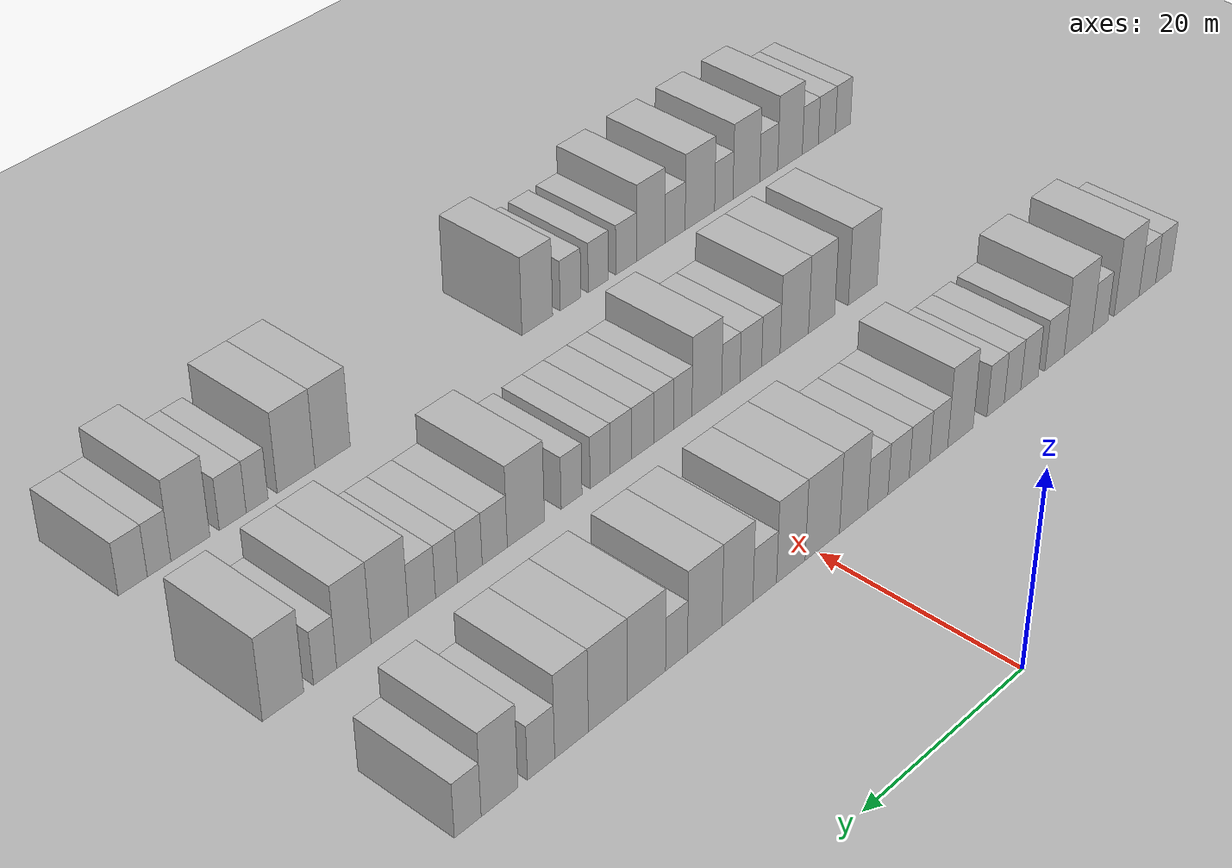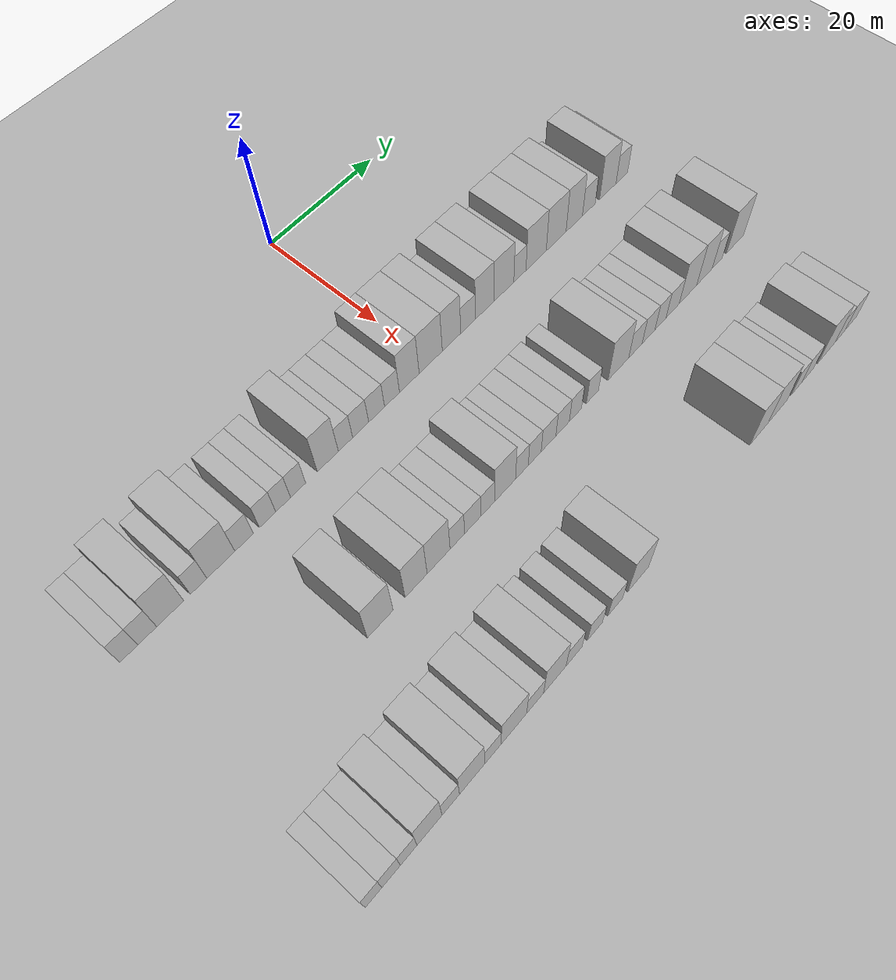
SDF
<sdf version="1.6">
 <world name="default">
  <include><name>ground_plane_1</name><uri>model://HANNAS_ground_plane</uri></include>
  <include>
   <name>ground_plane_2</name>
   <uri>model://HANNAS_ground_plane</uri>
   <pose>100 0 0  0 0 0</pose>
  </include>
  <model name="building_49">
   <static>1</static>
   <pose>25.0000 -50.6906 0 0.000000 0.000000 0.000000</pose>
   <link name="link">
    <pose>0 0 3.00 0 0 0</pose>
    <collision name="collision"><geometry><box><size>10.0000 2.6298 6.0000</size></box></geometry></collision>
    <visual name="visual">
     <cast_shadows>0</cast_shadows>
     <geometry><box><size>10.0000 2.6298 6.0000</size></box></geometry>
     <material>
      <script>
       <uri>model://HANNAS_wall/materials/scripts</uri>
       <uri>model://HANNAS_wall/materials/textures</uri>
       <name>vrc/HANNAS_wall</name>
      </script>
     </material>
    </visual>
   </link>
  </model>
  <model name="building_50">
   <static>1</static>
   <pose>25.0000 -47.9976 0 0.000000 0.000000 0.000000</pose>
   <link name="link">
    <pose>0 0 3.00 0 0 0</pose>
    <collision name="collision"><geometry><box><size>10.0000 2.7562 6.0000</size></box></geometry></collision>
    <visual name="visual">
     <cast_shadows>0</cast_shadows>
     <geometry><box><size>10.0000 2.7562 6.0000</size></box></geometry>
     <material>
      <script>
       <uri>model://HANNAS_wall/materials/scripts</uri>
       <uri>model://HANNAS_wall/materials/textures</uri>
       <name>vrc/HANNAS_wall</name>
      </script>
     </material>
    </visual>
   </link>
  </model>
  <model name="building_51">
   <static>1</static>
   <pose>25.0000 -44.5870 0 0.000000 0.000000 0.000000</pose>
   <link name="link">
    <pose>0 0 4.50 0 0 0</pose>
    <collision name="collision"><geometry><box><size>10.0000 4.0649 9.0000</size></box></geometry></collision>
    <visual name="visual">
     <cast_shadows>0</cast_shadows>
     <geometry><box><size>10.0000 4.0649 9.0000</size></box></geometry>
     <material>
      <script>
       <uri>model://HANNAS_wall/materials/scripts</uri>
       <uri>model://HANNAS_wall/materials/textures</uri>
       <name>vrc/HANNAS_wall</name>
      </script>
     </material>
    </visual>
   </link>
  </model>
  <model name="building_52">
   <static>1</static>
   <pose>25.0000 -40.2904 0 0.000000 0.000000 0.000000</pose>
   <link name="link">
    <pose>0 0 3.00 0 0 0</pose>
    <collision name="collision"><geometry><box><size>10.0000 2.5285 6.0000</size></box></geometry></collision>
    <visual name="visual">
     <cast_shadows>0</cast_shadows>
     <geometry><box><size>10.0000 2.5285 6.0000</size></box></geometry>
     <material>
      <script>
       <uri>model://HANNAS_wall/materials/scripts</uri>
       <uri>model://HANNAS_wall/materials/textures</uri>
       <name>vrc/HANNAS_wall</name>
      </script>
     </material>
    </visual>
   </link>
  </model>
  <model name="building_53">
   <static>1</static>
   <pose>25.0000 -36.8158 0 0.000000 0.000000 0.000000</pose>
   <link name="link">
    <pose>0 0 4.50 0 0 0</pose>
    <collision name="collision"><geometry><box><size>10.0000 4.4206 9.0000</size></box></geometry></collision>
    <visual name="visual">
     <cast_shadows>0</cast_shadows>
     <geometry><box><size>10.0000 4.4206 9.0000</size></box></geometry>
     <material>
      <script>
       <uri>model://HANNAS_wall/materials/scripts</uri>
       <uri>model://HANNAS_wall/materials/textures</uri>
       <name>vrc/HANNAS_wall</name>
      </script>
     </material>
    </visual>
   </link>
  </model>
  <model name="building_54">
   <static>1</static>
   <pose>25.0000 -33.1244 0 0.000000 0.000000 0.000000</pose>
   <link name="link">
    <pose>0 0 3.00 0 0 0</pose>
    <collision name="collision"><geometry><box><size>10.0000 2.9623 6.0000</size></box></geometry></collision>
    <visual name="visual">
     <cast_shadows>0</cast_shadows>
     <geometry><box><size>10.0000 2.9623 6.0000</size></box></geometry>
     <material>
      <script>
       <uri>model://HANNAS_wall/materials/scripts</uri>
       <uri>model://HANNAS_wall/materials/textures</uri>
       <name>vrc/HANNAS_wall</name>
      </script>
     </material>
    </visual>
   </link>
  </model>
  <model name="building_55">
   <static>1</static>
   <pose>25.0000 -29.3102 0 0.000000 0.000000 0.000000</pose>
   <link name="link">
    <pose>0 0 3.00 0 0 0</pose>
    <collision name="collision"><geometry><box><size>10.0000 2.6660 6.0000</size></box></geometry></collision>
    <visual name="visual">
     <cast_shadows>0</cast_shadows>
     <geometry><box><size>10.0000 2.6660 6.0000</size></box></geometry>
     <material>
      <script>
       <uri>model://HANNAS_wall/materials/scripts</uri>
       <uri>model://HANNAS_wall/materials/textures</uri>
       <name>vrc/HANNAS_wall</name>
      </script>
     </material>
    </visual>
   </link>
  </model>
  <model name="building_56">
   <static>1</static>
   <pose>25.0000 -26.7451 0 0.000000 0.000000 0.000000</pose>
   <link name="link">
    <pose>0 0 3.00 0 0 0</pose>
    <collision name="collision"><geometry><box><size>10.0000 2.4643 6.0000</size></box></geometry></collision>
    <visual name="visual">
     <cast_shadows>0</cast_shadows>
     <geometry><box><size>10.0000 2.4643 6.0000</size></box></geometry>
     <material>
      <script>
       <uri>model://HANNAS_wall/materials/scripts</uri>
       <uri>model://HANNAS_wall/materials/textures</uri>
       <name>vrc/HANNAS_wall</name>
      </script>
     </material>
    </visual>
   </link>
  </model>
  <model name="building_57">
   <static>1</static>
   <pose>25.0000 -24.2357 0 0.000000 0.000000 0.000000</pose>
   <link name="link">
    <pose>0 0 3.00 0 0 0</pose>
    <collision name="collision"><geometry><box><size>10.0000 2.5545 6.0000</size></box></geometry></collision>
    <visual name="visual">
     <cast_shadows>0</cast_shadows>
     <geometry><box><size>10.0000 2.5545 6.0000</size></box></geometry>
     <material>
      <script>
       <uri>model://HANNAS_wall/materials/scripts</uri>
       <uri>model://HANNAS_wall/materials/textures</uri>
       <name>vrc/HANNAS_wall</name>
      </script>
     </material>
    </visual>
   </link>
  </model>
  <model name="building_58">
   <static>1</static>
   <pose>25.0000 -19.1254 0 0.000000 0.000000 0.000000</pose>
   <link name="link">
    <pose>0 0 4.50 0 0 0</pose>
    <collision name="collision"><geometry><box><size>10.0000 3.6661 9.0000</size></box></geometry></collision>
    <visual name="visual">
     <cast_shadows>0</cast_shadows>
     <geometry><box><size>10.0000 3.6661 9.0000</size></box></geometry>
     <material>
      <script>
       <uri>model://HANNAS_wall/materials/scripts</uri>
       <uri>model://HANNAS_wall/materials/textures</uri>
       <name>vrc/HANNAS_wall</name>
      </script>
     </material>
    </visual>
   </link>
  </model>
  <model name="building_59">
   <static>1</static>
   <pose>25.0000 -16.0297 0 0.000000 0.000000 0.000000</pose>
   <link name="link">
    <pose>0 0 3.00 0 0 0</pose>
    <collision name="collision"><geometry><box><size>10.0000 2.5253 6.0000</size></box></geometry></collision>
    <visual name="visual">
     <cast_shadows>0</cast_shadows>
     <geometry><box><size>10.0000 2.5253 6.0000</size></box></geometry>
     <material>
      <script>
       <uri>model://HANNAS_wall/materials/scripts</uri>
       <uri>model://HANNAS_wall/materials/textures</uri>
       <name>vrc/HANNAS_wall</name>
      </script>
     </material>
    </visual>
   </link>
  </model>
  <model name="building_60">
   <static>1</static>
   <pose>25.0000 -13.3281 0 0.000000 0.000000 0.000000</pose>
   <link name="link">
    <pose>0 0 3.00 0 0 0</pose>
    <collision name="collision"><geometry><box><size>10.0000 2.8779 6.0000</size></box></geometry></collision>
    <visual name="visual">
     <cast_shadows>0</cast_shadows>
     <geometry><box><size>10.0000 2.8779 6.0000</size></box></geometry>
     <material>
      <script>
       <uri>model://HANNAS_wall/materials/scripts</uri>
       <uri>model://HANNAS_wall/materials/textures</uri>
       <name>vrc/HANNAS_wall</name>
      </script>
     </material>
    </visual>
   </link>
  </model>
  <model name="building_61">
   <static>1</static>
   <pose>25.0000 -10.4419 0 0.000000 0.000000 0.000000</pose>
   <link name="link">
    <pose>0 0 3.00 0 0 0</pose>
    <collision name="collision"><geometry><box><size>10.0000 2.8945 6.0000</size></box></geometry></collision>
    <visual name="visual">
     <cast_shadows>0</cast_shadows>
     <geometry><box><size>10.0000 2.8945 6.0000</size></box></geometry>
     <material>
      <script>
       <uri>model://HANNAS_wall/materials/scripts</uri>
       <uri>model://HANNAS_wall/materials/textures</uri>
       <name>vrc/HANNAS_wall</name>
      </script>
     </material>
    </visual>
   </link>
  </model>
  <model name="building_62">
   <static>1</static>
   <pose>25.0000 -7.6137 0 0.000000 0.000000 0.000000</pose>
   <link name="link">
    <pose>0 0 3.00 0 0 0</pose>
    <collision name="collision"><geometry><box><size>10.0000 2.7620 6.0000</size></box></geometry></collision>
    <visual name="visual">
     <cast_shadows>0</cast_shadows>
     <geometry><box><size>10.0000 2.7620 6.0000</size></box></geometry>
     <material>
      <script>
       <uri>model://HANNAS_wall/materials/scripts</uri>
       <uri>model://HANNAS_wall/materials/textures</uri>
       <name>vrc/HANNAS_wall</name>
      </script>
     </material>
    </visual>
   </link>
  </model>
  <model name="building_63">
   <static>1</static>
   <pose>25.0000 -4.3814 0 0.000000 0.000000 0.000000</pose>
   <link name="link">
    <pose>0 0 4.50 0 0 0</pose>
    <collision name="collision"><geometry><box><size>10.0000 3.7026 9.0000</size></box></geometry></collision>
    <visual name="visual">
     <cast_shadows>0</cast_shadows>
     <geometry><box><size>10.0000 3.7026 9.0000</size></box></geometry>
     <material>
      <script>
       <uri>model://HANNAS_wall/materials/scripts</uri>
       <uri>model://HANNAS_wall/materials/textures</uri>
       <name>vrc/HANNAS_wall</name>
      </script>
     </material>
    </visual>
   </link>
  </model>
  <model name="building_64">
   <static>1</static>
   <pose>25.0000 -0.3023 0 0.000000 0.000000 0.000000</pose>
   <link name="link">
    <pose>0 0 4.50 0 0 0</pose>
    <collision name="collision"><geometry><box><size>10.0000 4.4557 9.0000</size></box></geometry></collision>
    <visual name="visual">
     <cast_shadows>0</cast_shadows>
     <geometry><box><size>10.0000 4.4557 9.0000</size></box></geometry>
     <material>
      <script>
       <uri>model://HANNAS_wall/materials/scripts</uri>
       <uri>model://HANNAS_wall/materials/textures</uri>
       <name>vrc/HANNAS_wall</name>
      </script>
     </material>
    </visual>
   </link>
  </model>
  <model name="building_65">
   <static>1</static>
   <pose>25.0000 3.7389 0 0.000000 0.000000 0.000000</pose>
   <link name="link">
    <pose>0 0 4.50 0 0 0</pose>
    <collision name="collision"><geometry><box><size>10.0000 3.6267 9.0000</size></box></geometry></collision>
    <visual name="visual">
     <cast_shadows>0</cast_shadows>
     <geometry><box><size>10.0000 3.6267 9.0000</size></box></geometry>
     <material>
      <script>
       <uri>model://HANNAS_wall/materials/scripts</uri>
       <uri>model://HANNAS_wall/materials/textures</uri>
       <name>vrc/HANNAS_wall</name>
      </script>
     </material>
    </visual>
   </link>
  </model>
  <model name="building_66">
   <static>1</static>
   <pose>25.0000 7.0248 0 0.000000 0.000000 0.000000</pose>
   <link name="link">
    <pose>0 0 3.00 0 0 0</pose>
    <collision name="collision"><geometry><box><size>10.0000 2.9451 6.0000</size></box></geometry></collision>
    <visual name="visual">
     <cast_shadows>0</cast_shadows>
     <geometry><box><size>10.0000 2.9451 6.0000</size></box></geometry>
     <material>
      <script>
       <uri>model://HANNAS_wall/materials/scripts</uri>
       <uri>model://HANNAS_wall/materials/textures</uri>
       <name>vrc/HANNAS_wall</name>
      </script>
     </material>
    </visual>
   </link>
  </model>
  <model name="building_67">
   <static>1</static>
   <pose>25.0000 10.3840 0 0.000000 0.000000 0.000000</pose>
   <link name="link">
    <pose>0 0 4.50 0 0 0</pose>
    <collision name="collision"><geometry><box><size>10.0000 3.7734 9.0000</size></box></geometry></collision>
    <visual name="visual">
     <cast_shadows>0</cast_shadows>
     <geometry><box><size>10.0000 3.7734 9.0000</size></box></geometry>
     <material>
      <script>
       <uri>model://HANNAS_wall/materials/scripts</uri>
       <uri>model://HANNAS_wall/materials/textures</uri>
       <name>vrc/HANNAS_wall</name>
      </script>
     </material>
    </visual>
   </link>
  </model>
  <model name="building_68">
   <static>1</static>
   <pose>25.0000 14.3235 0 0.000000 0.000000 0.000000</pose>
   <link name="link">
    <pose>0 0 4.50 0 0 0</pose>
    <collision name="collision"><geometry><box><size>10.0000 4.1055 9.0000</size></box></geometry></collision>
    <visual name="visual">
     <cast_shadows>0</cast_shadows>
     <geometry><box><size>10.0000 4.1055 9.0000</size></box></geometry>
     <material>
      <script>
       <uri>model://HANNAS_wall/materials/scripts</uri>
       <uri>model://HANNAS_wall/materials/textures</uri>
       <name>vrc/HANNAS_wall</name>
      </script>
     </material>
    </visual>
   </link>
  </model>
  <model name="building_69">
   <static>1</static>
   <pose>25.0000 17.6575 0 0.000000 0.000000 0.000000</pose>
   <link name="link">
    <pose>0 0 3.00 0 0 0</pose>
    <collision name="collision"><geometry><box><size>10.0000 2.5625 6.0000</size></box></geometry></collision>
    <visual name="visual">
     <cast_shadows>0</cast_shadows>
     <geometry><box><size>10.0000 2.5625 6.0000</size></box></geometry>
     <material>
      <script>
       <uri>model://HANNAS_wall/materials/scripts</uri>
       <uri>model://HANNAS_wall/materials/textures</uri>
       <name>vrc/HANNAS_wall</name>
      </script>
     </material>
    </visual>
   </link>
  </model>
  <model name="building_70">
   <static>1</static>
   <pose>25.0000 21.1215 0 0.000000 0.000000 0.000000</pose>
   <link name="link">
    <pose>0 0 4.50 0 0 0</pose>
    <collision name="collision"><geometry><box><size>10.0000 4.3653 9.0000</size></box></geometry></collision>
    <visual name="visual">
     <cast_shadows>0</cast_shadows>
     <geometry><box><size>10.0000 4.3653 9.0000</size></box></geometry>
     <material>
      <script>
       <uri>model://HANNAS_wall/materials/scripts</uri>
       <uri>model://HANNAS_wall/materials/textures</uri>
       <name>vrc/HANNAS_wall</name>
      </script>
     </material>
    </visual>
   </link>
  </model>
  <model name="building_71">
   <static>1</static>
   <pose>25.0000 25.4780 0 0.000000 0.000000 0.000000</pose>
   <link name="link">
    <pose>0 0 4.50 0 0 0</pose>
    <collision name="collision"><geometry><box><size>10.0000 4.3476 9.0000</size></box></geometry></collision>
    <visual name="visual">
     <cast_shadows>0</cast_shadows>
     <geometry><box><size>10.0000 4.3476 9.0000</size></box></geometry>
     <material>
      <script>
       <uri>model://HANNAS_wall/materials/scripts</uri>
       <uri>model://HANNAS_wall/materials/textures</uri>
       <name>vrc/HANNAS_wall</name>
      </script>
     </material>
    </visual>
   </link>
  </model>
  <model name="building_72">
   <static>1</static>
   <pose>25.0000 29.4910 0 0.000000 0.000000 0.000000</pose>
   <link name="link">
    <pose>0 0 4.50 0 0 0</pose>
    <collision name="collision"><geometry><box><size>10.0000 3.6784 9.0000</size></box></geometry></collision>
    <visual name="visual">
     <cast_shadows>0</cast_shadows>
     <geometry><box><size>10.0000 3.6784 9.0000</size></box></geometry>
     <material>
      <script>
       <uri>model://HANNAS_wall/materials/scripts</uri>
       <uri>model://HANNAS_wall/materials/textures</uri>
       <name>vrc/HANNAS_wall</name>
      </script>
     </material>
    </visual>
   </link>
  </model>
  <model name="building_73">
   <static>1</static>
   <pose>25.0000 32.7859 0 0.000000 0.000000 0.000000</pose>
   <link name="link">
    <pose>0 0 3.00 0 0 0</pose>
    <collision name="collision"><geometry><box><size>10.0000 2.9114 6.0000</size></box></geometry></collision>
    <visual name="visual">
     <cast_shadows>0</cast_shadows>
     <geometry><box><size>10.0000 2.9114 6.0000</size></box></geometry>
     <material>
      <script>
       <uri>model://HANNAS_wall/materials/scripts</uri>
       <uri>model://HANNAS_wall/materials/textures</uri>
       <name>vrc/HANNAS_wall</name>
      </script>
     </material>
    </visual>
   </link>
  </model>
  <model name="building_74">
   <static>1</static>
   <pose>25.0000 37.1558 0 0.000000 0.000000 0.000000</pose>
   <link name="link">
    <pose>0 0 4.50 0 0 0</pose>
    <collision name="collision"><geometry><box><size>10.0000 3.8284 9.0000</size></box></geometry></collision>
    <visual name="visual">
     <cast_shadows>0</cast_shadows>
     <geometry><box><size>10.0000 3.8284 9.0000</size></box></geometry>
     <material>
      <script>
       <uri>model://HANNAS_wall/materials/scripts</uri>
       <uri>model://HANNAS_wall/materials/textures</uri>
       <name>vrc/HANNAS_wall</name>
      </script>
     </material>
    </visual>
   </link>
  </model>
  <model name="building_75">
   <static>1</static>
   <pose>25.0000 40.4386 0 0.000000 0.000000 0.000000</pose>
   <link name="link">
    <pose>0 0 3.00 0 0 0</pose>
    <collision name="collision"><geometry><box><size>10.0000 2.7372 6.0000</size></box></geometry></collision>
    <visual name="visual">
     <cast_shadows>0</cast_shadows>
     <geometry><box><size>10.0000 2.7372 6.0000</size></box></geometry>
     <material>
      <script>
       <uri>model://HANNAS_wall/materials/scripts</uri>
       <uri>model://HANNAS_wall/materials/textures</uri>
       <name>vrc/HANNAS_wall</name>
      </script>
     </material>
    </visual>
   </link>
  </model>
  <model name="building_173">
   <static>1</static>
   <pose>44.0000 -30.0078 0 0.000000 0.000000 0.000000</pose>
   <link name="link">
    <pose>0 0 4.50 0 0 0</pose>
    <collision name="collision"><geometry><box><size>10.0000 4.2751 9.0000</size></box></geometry></collision>
    <visual name="visual">
     <cast_shadows>0</cast_shadows>
     <geometry><box><size>10.0000 4.2751 9.0000</size></box></geometry>
     <material>
      <script>
       <uri>model://HANNAS_wall/materials/scripts</uri>
       <uri>model://HANNAS_wall/materials/textures</uri>
       <name>vrc/HANNAS_wall</name>
      </script>
     </material>
    </visual>
   </link>
  </model>
  <model name="building_174">
   <static>1</static>
   <pose>44.0000 -23.9813 0 0.000000 0.000000 0.000000</pose>
   <link name="link">
    <pose>0 0 4.50 0 0 0</pose>
    <collision name="collision"><geometry><box><size>10.0000 3.7779 9.0000</size></box></geometry></collision>
    <visual name="visual">
     <cast_shadows>0</cast_shadows>
     <geometry><box><size>10.0000 3.7779 9.0000</size></box></geometry>
     <material>
      <script>
       <uri>model://HANNAS_wall/materials/scripts</uri>
       <uri>model://HANNAS_wall/materials/textures</uri>
       <name>vrc/HANNAS_wall</name>
      </script>
     </material>
    </visual>
   </link>
  </model>
  <model name="building_175">
   <static>1</static>
   <pose>44.0000 -20.0873 0 0.000000 0.000000 0.000000</pose>
   <link name="link">
    <pose>0 0 4.50 0 0 0</pose>
    <collision name="collision"><geometry><box><size>10.0000 4.0100 9.0000</size></box></geometry></collision>
    <visual name="visual">
     <cast_shadows>0</cast_shadows>
     <geometry><box><size>10.0000 4.0100 9.0000</size></box></geometry>
     <material>
      <script>
       <uri>model://HANNAS_wall/materials/scripts</uri>
       <uri>model://HANNAS_wall/materials/textures</uri>
       <name>vrc/HANNAS_wall</name>
      </script>
     </material>
    </visual>
   </link>
  </model>
  <model name="building_176">
   <static>1</static>
   <pose>44.0000 -16.7918 0 0.000000 0.000000 0.000000</pose>
   <link name="link">
    <pose>0 0 3.00 0 0 0</pose>
    <collision name="collision"><geometry><box><size>10.0000 2.5811 6.0000</size></box></geometry></collision>
    <visual name="visual">
     <cast_shadows>0</cast_shadows>
     <geometry><box><size>10.0000 2.5811 6.0000</size></box></geometry>
     <material>
      <script>
       <uri>model://HANNAS_wall/materials/scripts</uri>
       <uri>model://HANNAS_wall/materials/textures</uri>
       <name>vrc/HANNAS_wall</name>
      </script>
     </material>
    </visual>
   </link>
  </model>
  <model name="building_177">
   <static>1</static>
   <pose>44.0000 -14.0156 0 0.000000 0.000000 0.000000</pose>
   <link name="link">
    <pose>0 0 3.00 0 0 0</pose>
    <collision name="collision"><geometry><box><size>10.0000 2.9712 6.0000</size></box></geometry></collision>
    <visual name="visual">
     <cast_shadows>0</cast_shadows>
     <geometry><box><size>10.0000 2.9712 6.0000</size></box></geometry>
     <material>
      <script>
       <uri>model://HANNAS_wall/materials/scripts</uri>
       <uri>model://HANNAS_wall/materials/textures</uri>
       <name>vrc/HANNAS_wall</name>
      </script>
     </material>
    </visual>
   </link>
  </model>
  <model name="building_178">
   <static>1</static>
   <pose>44.0000 -11.2934 0 0.000000 0.000000 0.000000</pose>
   <link name="link">
    <pose>0 0 3.00 0 0 0</pose>
    <collision name="collision"><geometry><box><size>10.0000 2.4733 6.0000</size></box></geometry></collision>
    <visual name="visual">
     <cast_shadows>0</cast_shadows>
     <geometry><box><size>10.0000 2.4733 6.0000</size></box></geometry>
     <material>
      <script>
       <uri>model://HANNAS_wall/materials/scripts</uri>
       <uri>model://HANNAS_wall/materials/textures</uri>
       <name>vrc/HANNAS_wall</name>
      </script>
     </material>
    </visual>
   </link>
  </model>
  <model name="building_179">
   <static>1</static>
   <pose>44.0000 -8.0855 0 0.000000 0.000000 0.000000</pose>
   <link name="link">
    <pose>0 0 4.50 0 0 0</pose>
    <collision name="collision"><geometry><box><size>10.0000 3.9425 9.0000</size></box></geometry></collision>
    <visual name="visual">
     <cast_shadows>0</cast_shadows>
     <geometry><box><size>10.0000 3.9425 9.0000</size></box></geometry>
     <material>
      <script>
       <uri>model://HANNAS_wall/materials/scripts</uri>
       <uri>model://HANNAS_wall/materials/textures</uri>
       <name>vrc/HANNAS_wall</name>
      </script>
     </material>
    </visual>
   </link>
  </model>
  <model name="building_180">
   <static>1</static>
   <pose>44.0000 -4.9028 0 0.000000 0.000000 0.000000</pose>
   <link name="link">
    <pose>0 0 3.00 0 0 0</pose>
    <collision name="collision"><geometry><box><size>10.0000 2.4229 6.0000</size></box></geometry></collision>
    <visual name="visual">
     <cast_shadows>0</cast_shadows>
     <geometry><box><size>10.0000 2.4229 6.0000</size></box></geometry>
     <material>
      <script>
       <uri>model://HANNAS_wall/materials/scripts</uri>
       <uri>model://HANNAS_wall/materials/textures</uri>
       <name>vrc/HANNAS_wall</name>
      </script>
     </material>
    </visual>
   </link>
  </model>
  <model name="building_181">
   <static>1</static>
   <pose>44.0000 -2.4399 0 0.000000 0.000000 0.000000</pose>
   <link name="link">
    <pose>0 0 3.00 0 0 0</pose>
    <collision name="collision"><geometry><box><size>10.0000 2.5028 6.0000</size></box></geometry></collision>
    <visual name="visual">
     <cast_shadows>0</cast_shadows>
     <geometry><box><size>10.0000 2.5028 6.0000</size></box></geometry>
     <material>
      <script>
       <uri>model://HANNAS_wall/materials/scripts</uri>
       <uri>model://HANNAS_wall/materials/textures</uri>
       <name>vrc/HANNAS_wall</name>
      </script>
     </material>
    </visual>
   </link>
  </model>
  <model name="building_182">
   <static>1</static>
   <pose>44.0000 0.2525 0 0.000000 0.000000 0.000000</pose>
   <link name="link">
    <pose>0 0 3.00 0 0 0</pose>
    <collision name="collision"><geometry><box><size>10.0000 2.8821 6.0000</size></box></geometry></collision>
    <visual name="visual">
     <cast_shadows>0</cast_shadows>
     <geometry><box><size>10.0000 2.8821 6.0000</size></box></geometry>
     <material>
      <script>
       <uri>model://HANNAS_wall/materials/scripts</uri>
       <uri>model://HANNAS_wall/materials/textures</uri>
       <name>vrc/HANNAS_wall</name>
      </script>
     </material>
    </visual>
   </link>
  </model>
  <model name="building_183">
   <static>1</static>
   <pose>44.0000 3.0267 0 0.000000 0.000000 0.000000</pose>
   <link name="link">
    <pose>0 0 3.00 0 0 0</pose>
    <collision name="collision"><geometry><box><size>10.0000 2.6662 6.0000</size></box></geometry></collision>
    <visual name="visual">
     <cast_shadows>0</cast_shadows>
     <geometry><box><size>10.0000 2.6662 6.0000</size></box></geometry>
     <material>
      <script>
       <uri>model://HANNAS_wall/materials/scripts</uri>
       <uri>model://HANNAS_wall/materials/textures</uri>
       <name>vrc/HANNAS_wall</name>
      </script>
     </material>
    </visual>
   </link>
  </model>
  <model name="building_184">
   <static>1</static>
   <pose>44.0000 5.5881 0 0.000000 0.000000 0.000000</pose>
   <link name="link">
    <pose>0 0 3.00 0 0 0</pose>
    <collision name="collision"><geometry><box><size>10.0000 2.4566 6.0000</size></box></geometry></collision>
    <visual name="visual">
     <cast_shadows>0</cast_shadows>
     <geometry><box><size>10.0000 2.4566 6.0000</size></box></geometry>
     <material>
      <script>
       <uri>model://HANNAS_wall/materials/scripts</uri>
       <uri>model://HANNAS_wall/materials/textures</uri>
       <name>vrc/HANNAS_wall</name>
      </script>
     </material>
    </visual>
   </link>
  </model>
  <model name="building_185">
   <static>1</static>
   <pose>44.0000 9.0751 0 0.000000 0.000000 0.000000</pose>
   <link name="link">
    <pose>0 0 3.00 0 0 0</pose>
    <collision name="collision"><geometry><box><size>10.0000 2.5174 6.0000</size></box></geometry></collision>
    <visual name="visual">
     <cast_shadows>0</cast_shadows>
     <geometry><box><size>10.0000 2.5174 6.0000</size></box></geometry>
     <material>
      <script>
       <uri>model://HANNAS_wall/materials/scripts</uri>
       <uri>model://HANNAS_wall/materials/textures</uri>
       <name>vrc/HANNAS_wall</name>
      </script>
     </material>
    </visual>
   </link>
  </model>
  <model name="building_186">
   <static>1</static>
   <pose>44.0000 14.5229 0 0.000000 0.000000 0.000000</pose>
   <link name="link">
    <pose>0 0 4.50 0 0 0</pose>
    <collision name="collision"><geometry><box><size>10.0000 4.3783 9.0000</size></box></geometry></collision>
    <visual name="visual">
     <cast_shadows>0</cast_shadows>
     <geometry><box><size>10.0000 4.3783 9.0000</size></box></geometry>
     <material>
      <script>
       <uri>model://HANNAS_wall/materials/scripts</uri>
       <uri>model://HANNAS_wall/materials/textures</uri>
       <name>vrc/HANNAS_wall</name>
      </script>
     </material>
    </visual>
   </link>
  </model>
  <model name="building_187">
   <static>1</static>
   <pose>44.0000 18.1627 0 0.000000 0.000000 0.000000</pose>
   <link name="link">
    <pose>0 0 3.00 0 0 0</pose>
    <collision name="collision"><geometry><box><size>10.0000 2.9013 6.0000</size></box></geometry></collision>
    <visual name="visual">
     <cast_shadows>0</cast_shadows>
     <geometry><box><size>10.0000 2.9013 6.0000</size></box></geometry>
     <material>
      <script>
       <uri>model://HANNAS_wall/materials/scripts</uri>
       <uri>model://HANNAS_wall/materials/textures</uri>
       <name>vrc/HANNAS_wall</name>
      </script>
     </material>
    </visual>
   </link>
  </model>
  <model name="building_188">
   <static>1</static>
   <pose>44.0000 21.0197 0 0.000000 0.000000 0.000000</pose>
   <link name="link">
    <pose>0 0 3.00 0 0 0</pose>
    <collision name="collision"><geometry><box><size>10.0000 2.8128 6.0000</size></box></geometry></collision>
    <visual name="visual">
     <cast_shadows>0</cast_shadows>
     <geometry><box><size>10.0000 2.8128 6.0000</size></box></geometry>
     <material>
      <script>
       <uri>model://HANNAS_wall/materials/scripts</uri>
       <uri>model://HANNAS_wall/materials/textures</uri>
       <name>vrc/HANNAS_wall</name>
      </script>
     </material>
    </visual>
   </link>
  </model>
  <model name="building_189">
   <static>1</static>
   <pose>44.0000 23.6505 0 0.000000 0.000000 0.000000</pose>
   <link name="link">
    <pose>0 0 3.00 0 0 0</pose>
    <collision name="collision"><geometry><box><size>10.0000 2.4487 6.0000</size></box></geometry></collision>
    <visual name="visual">
     <cast_shadows>0</cast_shadows>
     <geometry><box><size>10.0000 2.4487 6.0000</size></box></geometry>
     <material>
      <script>
       <uri>model://HANNAS_wall/materials/scripts</uri>
       <uri>model://HANNAS_wall/materials/textures</uri>
       <name>vrc/HANNAS_wall</name>
      </script>
     </material>
    </visual>
   </link>
  </model>
  <model name="building_190">
   <static>1</static>
   <pose>44.0000 26.3675 0 0.000000 0.000000 0.000000</pose>
   <link name="link">
    <pose>0 0 3.00 0 0 0</pose>
    <collision name="collision"><geometry><box><size>10.0000 2.9855 6.0000</size></box></geometry></collision>
    <visual name="visual">
     <cast_shadows>0</cast_shadows>
     <geometry><box><size>10.0000 2.9855 6.0000</size></box></geometry>
     <material>
      <script>
       <uri>model://HANNAS_wall/materials/scripts</uri>
       <uri>model://HANNAS_wall/materials/textures</uri>
       <name>vrc/HANNAS_wall</name>
      </script>
     </material>
    </visual>
   </link>
  </model>
  <model name="building_191">
   <static>1</static>
   <pose>44.0000 29.8787 0 0.000000 0.000000 0.000000</pose>
   <link name="link">
    <pose>0 0 4.50 0 0 0</pose>
    <collision name="collision"><geometry><box><size>10.0000 4.0370 9.0000</size></box></geometry></collision>
    <visual name="visual">
     <cast_shadows>0</cast_shadows>
     <geometry><box><size>10.0000 4.0370 9.0000</size></box></geometry>
     <material>
      <script>
       <uri>model://HANNAS_wall/materials/scripts</uri>
       <uri>model://HANNAS_wall/materials/textures</uri>
       <name>vrc/HANNAS_wall</name>
      </script>
     </material>
    </visual>
   </link>
  </model>
  <model name="building_192">
   <static>1</static>
   <pose>44.0000 33.7124 0 0.000000 0.000000 0.000000</pose>
   <link name="link">
    <pose>0 0 4.50 0 0 0</pose>
    <collision name="collision"><geometry><box><size>10.0000 3.6303 9.0000</size></box></geometry></collision>
    <visual name="visual">
     <cast_shadows>0</cast_shadows>
     <geometry><box><size>10.0000 3.6303 9.0000</size></box></geometry>
     <material>
      <script>
       <uri>model://HANNAS_wall/materials/scripts</uri>
       <uri>model://HANNAS_wall/materials/textures</uri>
       <name>vrc/HANNAS_wall</name>
      </script>
     </material>
    </visual>
   </link>
  </model>
  <model name="building_193">
   <static>1</static>
   <pose>44.0000 36.7323 0 0.000000 0.000000 0.000000</pose>
   <link name="link">
    <pose>0 0 3.00 0 0 0</pose>
    <collision name="collision"><geometry><box><size>10.0000 2.4097 6.0000</size></box></geometry></collision>
    <visual name="visual">
     <cast_shadows>0</cast_shadows>
     <geometry><box><size>10.0000 2.4097 6.0000</size></box></geometry>
     <material>
      <script>
       <uri>model://HANNAS_wall/materials/scripts</uri>
       <uri>model://HANNAS_wall/materials/textures</uri>
       <name>vrc/HANNAS_wall</name>
      </script>
     </material>
    </visual>
   </link>
  </model>
  <model name="building_194">
   <static>1</static>
   <pose>44.0000 41.0354 0 0.000000 0.000000 0.000000</pose>
   <link name="link">
    <pose>0 0 4.50 0 0 0</pose>
    <collision name="collision"><geometry><box><size>10.0000 4.1964 9.0000</size></box></geometry></collision>
    <visual name="visual">
     <cast_shadows>0</cast_shadows>
     <geometry><box><size>10.0000 4.1964 9.0000</size></box></geometry>
     <material>
      <script>
       <uri>model://HANNAS_wall/materials/scripts</uri>
       <uri>model://HANNAS_wall/materials/textures</uri>
       <name>vrc/HANNAS_wall</name>
      </script>
     </material>
    </visual>
   </link>
  </model>
  <model name="building_288">
   <static>1</static>
   <pose>63.0000 -51.1696 0 0.000000 0.000000 0.000000</pose>
   <link name="link">
    <pose>0 0 3.00 0 0 0</pose>
    <collision name="collision"><geometry><box><size>10.0000 2.4294 6.0000</size></box></geometry></collision>
    <visual name="visual">
     <cast_shadows>0</cast_shadows>
     <geometry><box><size>10.0000 2.4294 6.0000</size></box></geometry>
     <material>
      <script>
       <uri>model://HANNAS_wall/materials/scripts</uri>
       <uri>model://HANNAS_wall/materials/textures</uri>
       <name>vrc/HANNAS_wall</name>
      </script>
     </material>
    </visual>
   </link>
  </model>
  <model name="building_289">
   <static>1</static>
   <pose>63.0000 -48.5936 0 0.000000 0.000000 0.000000</pose>
   <link name="link">
    <pose>0 0 3.00 0 0 0</pose>
    <collision name="collision"><geometry><box><size>10.0000 2.7227 6.0000</size></box></geometry></collision>
    <visual name="visual">
     <cast_shadows>0</cast_shadows>
     <geometry><box><size>10.0000 2.7227 6.0000</size></box></geometry>
     <material>
      <script>
       <uri>model://HANNAS_wall/materials/scripts</uri>
       <uri>model://HANNAS_wall/materials/textures</uri>
       <name>vrc/HANNAS_wall</name>
      </script>
     </material>
    </visual>
   </link>
  </model>
  <model name="building_290">
   <static>1</static>
   <pose>63.0000 -45.9741 0 0.000000 0.000000 0.000000</pose>
   <link name="link">
    <pose>0 0 3.00 0 0 0</pose>
    <collision name="collision"><geometry><box><size>10.0000 2.5162 6.0000</size></box></geometry></collision>
    <visual name="visual">
     <cast_shadows>0</cast_shadows>
     <geometry><box><size>10.0000 2.5162 6.0000</size></box></geometry>
     <material>
      <script>
       <uri>model://HANNAS_wall/materials/scripts</uri>
       <uri>model://HANNAS_wall/materials/textures</uri>
       <name>vrc/HANNAS_wall</name>
      </script>
     </material>
    </visual>
   </link>
  </model>
  <model name="building_291">
   <static>1</static>
   <pose>63.0000 -42.8010 0 0.000000 0.000000 0.000000</pose>
   <link name="link">
    <pose>0 0 4.50 0 0 0</pose>
    <collision name="collision"><geometry><box><size>10.0000 3.8300 9.0000</size></box></geometry></collision>
    <visual name="visual">
     <cast_shadows>0</cast_shadows>
     <geometry><box><size>10.0000 3.8300 9.0000</size></box></geometry>
     <material>
      <script>
       <uri>model://HANNAS_wall/materials/scripts</uri>
       <uri>model://HANNAS_wall/materials/textures</uri>
       <name>vrc/HANNAS_wall</name>
      </script>
     </material>
    </visual>
   </link>
  </model>
  <model name="building_292">
   <static>1</static>
   <pose>63.0000 -39.5130 0 0.000000 0.000000 0.000000</pose>
   <link name="link">
    <pose>0 0 3.00 0 0 0</pose>
    <collision name="collision"><geometry><box><size>10.0000 2.7461 6.0000</size></box></geometry></collision>
    <visual name="visual">
     <cast_shadows>0</cast_shadows>
     <geometry><box><size>10.0000 2.7461 6.0000</size></box></geometry>
     <material>
      <script>
       <uri>model://HANNAS_wall/materials/scripts</uri>
       <uri>model://HANNAS_wall/materials/textures</uri>
       <name>vrc/HANNAS_wall</name>
      </script>
     </material>
    </visual>
   </link>
  </model>
  <model name="building_293">
   <static>1</static>
   <pose>63.0000 -36.1233 0 0.000000 0.000000 0.000000</pose>
   <link name="link">
    <pose>0 0 4.50 0 0 0</pose>
    <collision name="collision"><geometry><box><size>10.0000 4.0334 9.0000</size></box></geometry></collision>
    <visual name="visual">
     <cast_shadows>0</cast_shadows>
     <geometry><box><size>10.0000 4.0334 9.0000</size></box></geometry>
     <material>
      <script>
       <uri>model://HANNAS_wall/materials/scripts</uri>
       <uri>model://HANNAS_wall/materials/textures</uri>
       <name>vrc/HANNAS_wall</name>
      </script>
     </material>
    </visual>
   </link>
  </model>
  <model name="building_294">
   <static>1</static>
   <pose>63.0000 -32.7518 0 0.000000 0.000000 0.000000</pose>
   <link name="link">
    <pose>0 0 3.00 0 0 0</pose>
    <collision name="collision"><geometry><box><size>10.0000 2.7096 6.0000</size></box></geometry></collision>
    <visual name="visual">
     <cast_shadows>0</cast_shadows>
     <geometry><box><size>10.0000 2.7096 6.0000</size></box></geometry>
     <material>
      <script>
       <uri>model://HANNAS_wall/materials/scripts</uri>
       <uri>model://HANNAS_wall/materials/textures</uri>
       <name>vrc/HANNAS_wall</name>
      </script>
     </material>
    </visual>
   </link>
  </model>
  <model name="building_295">
   <static>1</static>
   <pose>63.0000 -29.2472 0 0.000000 0.000000 0.000000</pose>
   <link name="link">
    <pose>0 0 4.50 0 0 0</pose>
    <collision name="collision"><geometry><box><size>10.0000 4.2996 9.0000</size></box></geometry></collision>
    <visual name="visual">
     <cast_shadows>0</cast_shadows>
     <geometry><box><size>10.0000 4.2996 9.0000</size></box></geometry>
     <material>
      <script>
       <uri>model://HANNAS_wall/materials/scripts</uri>
       <uri>model://HANNAS_wall/materials/textures</uri>
       <name>vrc/HANNAS_wall</name>
      </script>
     </material>
    </visual>
   </link>
  </model>
  <model name="building_296">
   <static>1</static>
   <pose>63.0000 -25.6414 0 0.000000 0.000000 0.000000</pose>
   <link name="link">
    <pose>0 0 3.00 0 0 0</pose>
    <collision name="collision"><geometry><box><size>10.0000 2.9120 6.0000</size></box></geometry></collision>
    <visual name="visual">
     <cast_shadows>0</cast_shadows>
     <geometry><box><size>10.0000 2.9120 6.0000</size></box></geometry>
     <material>
      <script>
       <uri>model://HANNAS_wall/materials/scripts</uri>
       <uri>model://HANNAS_wall/materials/textures</uri>
       <name>vrc/HANNAS_wall</name>
      </script>
     </material>
    </visual>
   </link>
  </model>
  <model name="building_297">
   <static>1</static>
   <pose>63.0000 -22.2075 0 0.000000 0.000000 0.000000</pose>
   <link name="link">
    <pose>0 0 4.50 0 0 0</pose>
    <collision name="collision"><geometry><box><size>10.0000 3.9558 9.0000</size></box></geometry></collision>
    <visual name="visual">
     <cast_shadows>0</cast_shadows>
     <geometry><box><size>10.0000 3.9558 9.0000</size></box></geometry>
     <material>
      <script>
       <uri>model://HANNAS_wall/materials/scripts</uri>
       <uri>model://HANNAS_wall/materials/textures</uri>
       <name>vrc/HANNAS_wall</name>
      </script>
     </material>
    </visual>
   </link>
  </model>
  <model name="building_298">
   <static>1</static>
   <pose>63.0000 -18.7862 0 0.000000 0.000000 0.000000</pose>
   <link name="link">
    <pose>0 0 3.00 0 0 0</pose>
    <collision name="collision"><geometry><box><size>10.0000 2.8870 6.0000</size></box></geometry></collision>
    <visual name="visual">
     <cast_shadows>0</cast_shadows>
     <geometry><box><size>10.0000 2.8870 6.0000</size></box></geometry>
     <material>
      <script>
       <uri>model://HANNAS_wall/materials/scripts</uri>
       <uri>model://HANNAS_wall/materials/textures</uri>
       <name>vrc/HANNAS_wall</name>
      </script>
     </material>
    </visual>
   </link>
  </model>
  <model name="building_299">
   <static>1</static>
   <pose>63.0000 -14.9668 0 0.000000 0.000000 0.000000</pose>
   <link name="link">
    <pose>0 0 3.00 0 0 0</pose>
    <collision name="collision"><geometry><box><size>10.0000 2.7517 6.0000</size></box></geometry></collision>
    <visual name="visual">
     <cast_shadows>0</cast_shadows>
     <geometry><box><size>10.0000 2.7517 6.0000</size></box></geometry>
     <material>
      <script>
       <uri>model://HANNAS_wall/materials/scripts</uri>
       <uri>model://HANNAS_wall/materials/textures</uri>
       <name>vrc/HANNAS_wall</name>
      </script>
     </material>
    </visual>
   </link>
  </model>
  <model name="building_300">
   <static>1</static>
   <pose>63.0000 -11.2038 0 0.000000 0.000000 0.000000</pose>
   <link name="link">
    <pose>0 0 3.00 0 0 0</pose>
    <collision name="collision"><geometry><box><size>10.0000 2.7744 6.0000</size></box></geometry></collision>
    <visual name="visual">
     <cast_shadows>0</cast_shadows>
     <geometry><box><size>10.0000 2.7744 6.0000</size></box></geometry>
     <material>
      <script>
       <uri>model://HANNAS_wall/materials/scripts</uri>
       <uri>model://HANNAS_wall/materials/textures</uri>
       <name>vrc/HANNAS_wall</name>
      </script>
     </material>
    </visual>
   </link>
  </model>
  <model name="building_301">
   <static>1</static>
   <pose>63.0000 -6.8111 0 0.000000 0.000000 0.000000</pose>
   <link name="link">
    <pose>0 0 4.50 0 0 0</pose>
    <collision name="collision"><geometry><box><size>10.0000 4.0110 9.0000</size></box></geometry></collision>
    <visual name="visual">
     <cast_shadows>0</cast_shadows>
     <geometry><box><size>10.0000 4.0110 9.0000</size></box></geometry>
     <material>
      <script>
       <uri>model://HANNAS_wall/materials/scripts</uri>
       <uri>model://HANNAS_wall/materials/textures</uri>
       <name>vrc/HANNAS_wall</name>
      </script>
     </material>
    </visual>
   </link>
  </model>
  <model name="building_302">
   <static>1</static>
   <pose>63.0000 18.2646 0 0.000000 0.000000 0.000000</pose>
   <link name="link">
    <pose>0 0 4.50 0 0 0</pose>
    <collision name="collision"><geometry><box><size>10.0000 4.0469 9.0000</size></box></geometry></collision>
    <visual name="visual">
     <cast_shadows>0</cast_shadows>
     <geometry><box><size>10.0000 4.0469 9.0000</size></box></geometry>
     <material>
      <script>
       <uri>model://HANNAS_wall/materials/scripts</uri>
       <uri>model://HANNAS_wall/materials/textures</uri>
       <name>vrc/HANNAS_wall</name>
      </script>
     </material>
    </visual>
   </link>
  </model>
  <model name="building_303">
   <static>1</static>
   <pose>63.0000 22.4115 0 0.000000 0.000000 0.000000</pose>
   <link name="link">
    <pose>0 0 4.50 0 0 0</pose>
    <collision name="collision"><geometry><box><size>10.0000 4.2469 9.0000</size></box></geometry></collision>
    <visual name="visual">
     <cast_shadows>0</cast_shadows>
     <geometry><box><size>10.0000 4.2469 9.0000</size></box></geometry>
     <material>
      <script>
       <uri>model://HANNAS_wall/materials/scripts</uri>
       <uri>model://HANNAS_wall/materials/textures</uri>
       <name>vrc/HANNAS_wall</name>
      </script>
     </material>
    </visual>
   </link>
  </model>
  <model name="building_304">
   <static>1</static>
   <pose>63.0000 26.7359 0 0.000000 0.000000 0.000000</pose>
   <link name="link">
    <pose>0 0 3.00 0 0 0</pose>
    <collision name="collision"><geometry><box><size>10.0000 2.4017 6.0000</size></box></geometry></collision>
    <visual name="visual">
     <cast_shadows>0</cast_shadows>
     <geometry><box><size>10.0000 2.4017 6.0000</size></box></geometry>
     <material>
      <script>
       <uri>model://HANNAS_wall/materials/scripts</uri>
       <uri>model://HANNAS_wall/materials/textures</uri>
       <name>vrc/HANNAS_wall</name>
      </script>
     </material>
    </visual>
   </link>
  </model>
  <model name="building_305">
   <static>1</static>
   <pose>63.0000 29.3927 0 0.000000 0.000000 0.000000</pose>
   <link name="link">
    <pose>0 0 3.00 0 0 0</pose>
    <collision name="collision"><geometry><box><size>10.0000 2.9119 6.0000</size></box></geometry></collision>
    <visual name="visual">
     <cast_shadows>0</cast_shadows>
     <geometry><box><size>10.0000 2.9119 6.0000</size></box></geometry>
     <material>
      <script>
       <uri>model://HANNAS_wall/materials/scripts</uri>
       <uri>model://HANNAS_wall/materials/textures</uri>
       <name>vrc/HANNAS_wall</name>
      </script>
     </material>
    </visual>
   </link>
  </model>
  <model name="building_306">
   <static>1</static>
   <pose>63.0000 33.9082 0 0.000000 0.000000 0.000000</pose>
   <link name="link">
    <pose>0 0 4.50 0 0 0</pose>
    <collision name="collision"><geometry><box><size>10.0000 4.1190 9.0000</size></box></geometry></collision>
    <visual name="visual">
     <cast_shadows>0</cast_shadows>
     <geometry><box><size>10.0000 4.1190 9.0000</size></box></geometry>
     <material>
      <script>
       <uri>model://HANNAS_wall/materials/scripts</uri>
       <uri>model://HANNAS_wall/materials/textures</uri>
       <name>vrc/HANNAS_wall</name>
      </script>
     </material>
    </visual>
   </link>
  </model>
  <model name="building_307">
   <static>1</static>
   <pose>63.0000 37.1889 0 0.000000 0.000000 0.000000</pose>
   <link name="link">
    <pose>0 0 3.00 0 0 0</pose>
    <collision name="collision"><geometry><box><size>10.0000 2.4424 6.0000</size></box></geometry></collision>
    <visual name="visual">
     <cast_shadows>0</cast_shadows>
     <geometry><box><size>10.0000 2.4424 6.0000</size></box></geometry>
     <material>
      <script>
       <uri>model://HANNAS_wall/materials/scripts</uri>
       <uri>model://HANNAS_wall/materials/textures</uri>
       <name>vrc/HANNAS_wall</name>
      </script>
     </material>
    </visual>
   </link>
  </model>
  <model name="building_308">
   <static>1</static>
   <pose>63.0000 39.9007 0 0.000000 0.000000 0.000000</pose>
   <link name="link">
    <pose>0 0 3.00 0 0 0</pose>
    <collision name="collision"><geometry><box><size>10.0000 2.9814 6.0000</size></box></geometry></collision>
    <visual name="visual">
     <cast_shadows>0</cast_shadows>
     <geometry><box><size>10.0000 2.9814 6.0000</size></box></geometry>
     <material>
      <script>
       <uri>model://HANNAS_wall/materials/scripts</uri>
       <uri>model://HANNAS_wall/materials/textures</uri>
       <name>vrc/HANNAS_wall</name>
      </script>
     </material>
    </visual>
   </link>
  </model>
 </world>
</sdf>
